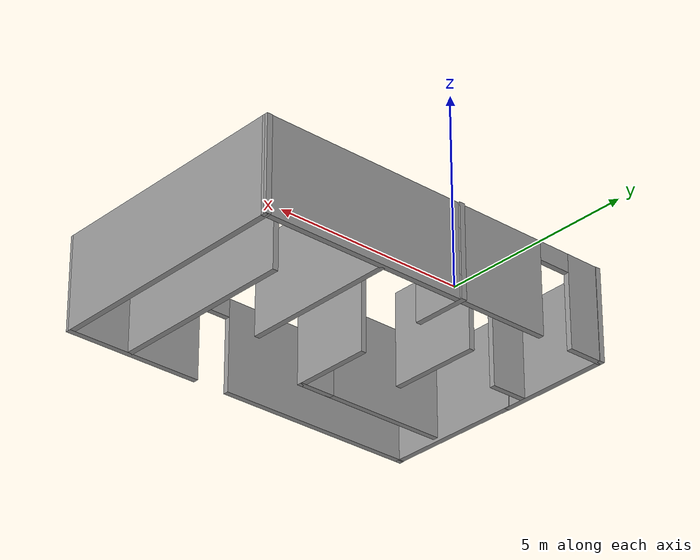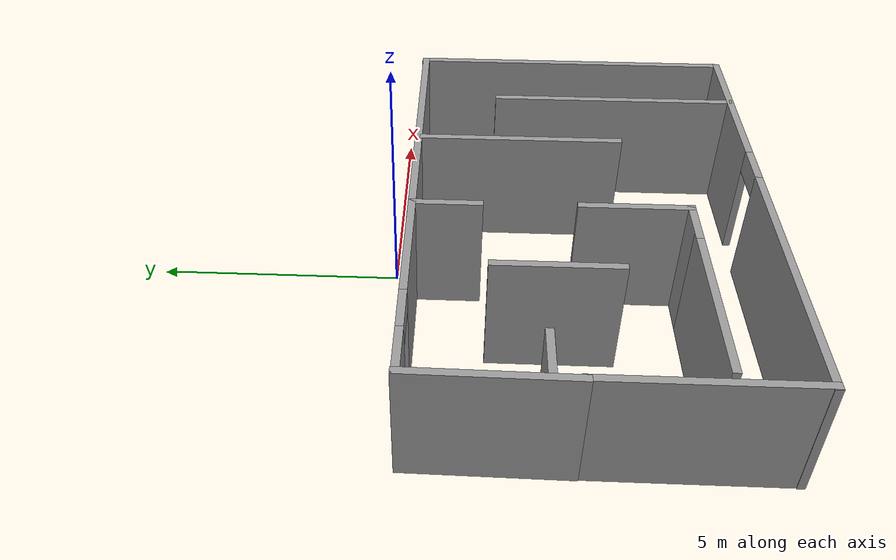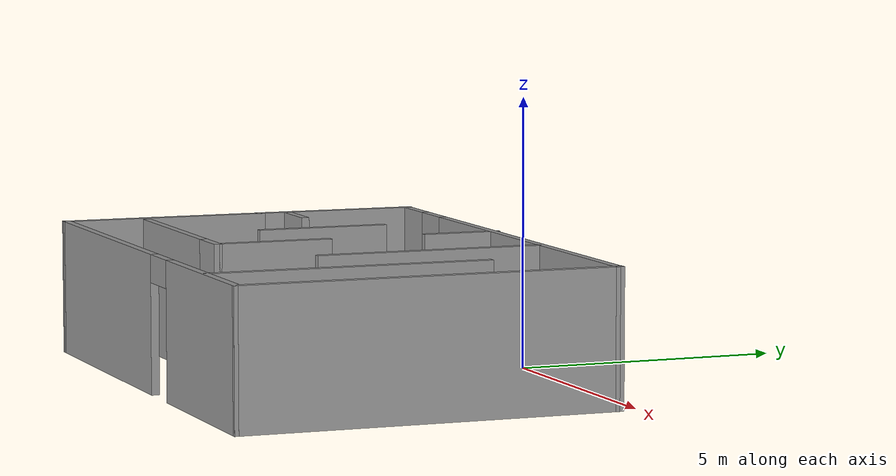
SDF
<?xml version='1.0'?>
<sdf version='1.7'>
  <model name='milo_labe'>
    <pose>0.050582 -3.66416 0 0 -0 0</pose>
    <link name='Wall_0'>
      <collision name='Wall_0_Collision'>
        <geometry>
          <box>
            <size>4 0.15 2.5</size>
          </box>
        </geometry>
        <pose>0 0 1.25 0 -0 0</pose>
      </collision>
      <visual name='Wall_0_Visual'>
        <pose>0 0 1.25 0 -0 0</pose>
        <geometry>
          <box>
            <size>4 0.15 2.5</size>
          </box>
        </geometry>
        <material>
          <script>
            <uri>file://media/materials/scripts/gazebo.material</uri>
            <name>Gazebo/Grey</name>
          </script>
          <ambient>1 1 1 1</ambient>
        </material>
        <meta>
          <layer>0</layer>
        </meta>
      </visual>
      <pose>-5.03541 -1.66406 0 0 -0 -1.5708</pose>
    </link>
    <link name='Wall_1'>
      <pose>-0.004607 -3.58245 0 0 -0 0.001311</pose>
      <visual name='Wall_1_Visual_0'>
        <pose>-2.30503 0 1.25 0 -0 0</pose>
        <geometry>
          <box>
            <size>5.628 0.15 2.5</size>
          </box>
        </geometry>
        <material>
          <script>
            <uri>file://media/materials/scripts/gazebo.material</uri>
            <name>Gazebo/Grey</name>
          </script>
          <ambient>1 1 1 1</ambient>
        </material>
        <meta>
          <layer>0</layer>
        </meta>
      </visual>
      <collision name='Wall_1_Collision_0'>
        <geometry>
          <box>
            <size>5.628 0.15 2.5</size>
          </box>
        </geometry>
        <pose>-2.30503 0 1.25 0 -0 0</pose>
      </collision>
      <visual name='Wall_1_Visual_1'>
        <pose>3.264 0 1.25 0 -0 0</pose>
        <geometry>
          <box>
            <size>3.71006 0.15 2.5</size>
          </box>
        </geometry>
        <material>
          <script>
            <uri>file://media/materials/scripts/gazebo.material</uri>
            <name>Gazebo/Grey</name>
          </script>
          <ambient>1 1 1 1</ambient>
        </material>
        <meta>
          <layer>0</layer>
        </meta>
      </visual>
      <collision name='Wall_1_Collision_1'>
        <geometry>
          <box>
            <size>3.71006 0.15 2.5</size>
          </box>
        </geometry>
        <pose>3.264 0 1.25 0 -0 0</pose>
      </collision>
      <visual name='Wall_1_Visual_2'>
        <pose>0.958971 0 2.25 0 -0 0</pose>
        <geometry>
          <box>
            <size>0.9 0.15 0.5</size>
          </box>
        </geometry>
        <material>
          <script>
            <uri>file://media/materials/scripts/gazebo.material</uri>
            <name>Gazebo/Grey</name>
          </script>
          <ambient>1 1 1 1</ambient>
        </material>
        <meta>
          <layer>0</layer>
        </meta>
      </visual>
      <collision name='Wall_1_Collision_2'>
        <geometry>
          <box>
            <size>0.9 0.15 0.5</size>
          </box>
        </geometry>
        <pose>0.958971 0 2.25 0 -0 0</pose>
      </collision>
    </link>
    <link name='Wall_10'>
      <collision name='Wall_10_Collision'>
        <geometry>
          <box>
            <size>2.25 0.15 2.5</size>
          </box>
        </geometry>
        <pose>0 0 1.25 0 -0 0</pose>
      </collision>
      <visual name='Wall_10_Visual'>
        <pose>0 0 1.25 0 -0 0</pose>
        <geometry>
          <box>
            <size>2.25 0.15 2.5</size>
          </box>
        </geometry>
        <material>
          <script>
            <uri>file://media/materials/scripts/gazebo.material</uri>
            <name>Gazebo/Grey</name>
          </script>
          <ambient>1 1 1 1</ambient>
        </material>
        <meta>
          <layer>0</layer>
        </meta>
      </visual>
      <pose>-0.568702 -1.0325 0 0 -0 1.5708</pose>
    </link>
    <link name='Wall_13'>
      <collision name='Wall_13_Collision'>
        <geometry>
          <box>
            <size>1 0.15 2.5</size>
          </box>
        </geometry>
        <pose>0 0 1.25 0 -0 0</pose>
      </collision>
      <visual name='Wall_13_Visual'>
        <pose>0 0 1.25 0 -0 0</pose>
        <geometry>
          <box>
            <size>1 0.15 2.5</size>
          </box>
        </geometry>
        <material>
          <script>
            <uri>file://media/materials/scripts/gazebo.material</uri>
            <name>Gazebo/Grey</name>
          </script>
          <ambient>1 1 1 1</ambient>
        </material>
        <meta>
          <layer>0</layer>
        </meta>
      </visual>
      <pose>-4.46273 0.800548 0 0 -0 0</pose>
    </link>
    <link name='Wall_15'>
      <collision name='Wall_15_Collision'>
        <geometry>
          <box>
            <size>4.25 0.15 2.5</size>
          </box>
        </geometry>
        <pose>0 0 1.25 0 -0 0</pose>
      </collision>
      <visual name='Wall_15_Visual'>
        <pose>0 0 1.25 0 -0 0</pose>
        <geometry>
          <box>
            <size>4.25 0.15 2.5</size>
          </box>
        </geometry>
        <material>
          <script>
            <uri>file://media/materials/scripts/gazebo.material</uri>
            <name>Gazebo/Grey</name>
          </script>
          <ambient>1 1 1 1</ambient>
        </material>
        <meta>
          <layer>0</layer>
        </meta>
      </visual>
      <pose>1.71155 1.1313 0 0 -0 1.5708</pose>
    </link>
    <link name='Wall_17'>
      <collision name='Wall_17_Collision'>
        <geometry>
          <box>
            <size>5.25 0.15 2.5</size>
          </box>
        </geometry>
        <pose>0 0 1.25 0 -0 0</pose>
      </collision>
      <visual name='Wall_17_Visual'>
        <pose>0 0 1.25 0 -0 0</pose>
        <geometry>
          <box>
            <size>5.25 0.15 2.5</size>
          </box>
        </geometry>
        <material>
          <script>
            <uri>file://media/materials/scripts/gazebo.material</uri>
            <name>Gazebo/Grey</name>
          </script>
          <ambient>1 1 1 1</ambient>
        </material>
        <meta>
          <layer>0</layer>
        </meta>
      </visual>
      <pose>3.39112 -0.987252 0 0 -0 1.5708</pose>
    </link>
    <link name='Wall_19'>
      <collision name='Wall_19_Collision'>
        <geometry>
          <box>
            <size>1.5 0.15 2.5</size>
          </box>
        </geometry>
        <pose>0 0 1.25 0 -0 0</pose>
      </collision>
      <visual name='Wall_19_Visual'>
        <pose>0 0 1.25 0 -0 0</pose>
        <geometry>
          <box>
            <size>1.5 0.15 2.5</size>
          </box>
        </geometry>
        <material>
          <script>
            <uri>file://media/materials/scripts/gazebo.material</uri>
            <name>Gazebo/Grey</name>
          </script>
          <ambient>1 1 1 1</ambient>
        </material>
        <meta>
          <layer>0</layer>
        </meta>
      </visual>
      <pose>-0.594189 2.65663 0 0 -0 -1.5708</pose>
    </link>
    <link name='Wall_2'>
      <collision name='Wall_2_Collision'>
        <geometry>
          <box>
            <size>7.02001 0.15 2.5</size>
          </box>
        </geometry>
        <pose>0 0 1.25 0 -0 0</pose>
      </collision>
      <visual name='Wall_2_Visual'>
        <pose>0 0 1.25 0 -0 0</pose>
        <geometry>
          <box>
            <size>7.02001 0.15 2.5</size>
          </box>
        </geometry>
        <material>
          <script>
            <uri>file://media/materials/scripts/gazebo.material</uri>
            <name>Gazebo/Grey</name>
          </script>
          <ambient>1 1 1 1</ambient>
        </material>
        <meta>
          <layer>0</layer>
        </meta>
      </visual>
      <pose>5.04442 -0.140838 0 0 -0 1.56934</pose>
    </link>
    <link name='Wall_3'>
      <pose>0.025231 3.28255 0 0 -0 -3.14127</pose>
      <visual name='Wall_3_Visual_0'>
        <pose>-0.976436 0 1.25 0 -0 0</pose>
        <geometry>
          <box>
            <size>8.2455 0.15 2.5</size>
          </box>
        </geometry>
        <material>
          <script>
            <uri>file://media/materials/scripts/gazebo.material</uri>
            <name>Gazebo/Grey</name>
          </script>
          <ambient>1 1 1 1</ambient>
        </material>
        <meta>
          <layer>0</layer>
        </meta>
      </visual>
      <collision name='Wall_3_Collision_0'>
        <geometry>
          <box>
            <size>8.2455 0.15 2.5</size>
          </box>
        </geometry>
        <pose>-0.976436 0 1.25 0 -0 0</pose>
      </collision>
      <visual name='Wall_3_Visual_1'>
        <pose>4.57275 0 1.25 0 -0 0</pose>
        <geometry>
          <box>
            <size>1.05287 0.15 2.5</size>
          </box>
        </geometry>
        <material>
          <script>
            <uri>file://media/materials/scripts/gazebo.material</uri>
            <name>Gazebo/Grey</name>
          </script>
          <ambient>1 1 1 1</ambient>
        </material>
        <meta>
          <layer>0</layer>
        </meta>
      </visual>
      <collision name='Wall_3_Collision_1'>
        <geometry>
          <box>
            <size>1.05287 0.15 2.5</size>
          </box>
        </geometry>
        <pose>4.57275 0 1.25 0 -0 0</pose>
      </collision>
      <visual name='Wall_3_Visual_2'>
        <pose>3.59632 0 2.25 0 -0 0</pose>
        <geometry>
          <box>
            <size>0.9 0.15 0.5</size>
          </box>
        </geometry>
        <material>
          <script>
            <uri>file://media/materials/scripts/gazebo.material</uri>
            <name>Gazebo/Grey</name>
          </script>
          <ambient>1 1 1 1</ambient>
        </material>
        <meta>
          <layer>0</layer>
        </meta>
      </visual>
      <collision name='Wall_3_Collision_2'>
        <geometry>
          <box>
            <size>0.9 0.15 0.5</size>
          </box>
        </geometry>
        <pose>3.59632 0 2.25 0 -0 0</pose>
      </collision>
    </link>
    <link name='Wall_4'>
      <collision name='Wall_4_Collision'>
        <geometry>
          <box>
            <size>3.18331 0.15 2.5</size>
          </box>
        </geometry>
        <pose>0 0 1.25 0 -0 0</pose>
      </collision>
      <visual name='Wall_4_Visual'>
        <pose>0 0 1.25 0 -0 0</pose>
        <geometry>
          <box>
            <size>3.18331 0.15 2.5</size>
          </box>
        </geometry>
        <material>
          <script>
            <uri>file://media/materials/scripts/gazebo.material</uri>
            <name>Gazebo/Grey</name>
          </script>
          <ambient>1 1 1 1</ambient>
        </material>
        <meta>
          <layer>0</layer>
        </meta>
      </visual>
      <pose>-5.03041 1.77755 0 0 -0 -1.58281</pose>
    </link>
    <link name='Wall_6'>
      <collision name='Wall_6_Collision'>
        <geometry>
          <box>
            <size>2.5 0.15 2.5</size>
          </box>
        </geometry>
        <pose>0 0 1.25 0 -0 0</pose>
      </collision>
      <visual name='Wall_6_Visual'>
        <pose>0 0 1.25 0 -0 0</pose>
        <geometry>
          <box>
            <size>2.5 0.15 2.5</size>
          </box>
        </geometry>
        <material>
          <script>
            <uri>file://media/materials/scripts/gazebo.material</uri>
            <name>Gazebo/Grey</name>
          </script>
          <ambient>1 1 1 1</ambient>
        </material>
        <meta>
          <layer>0</layer>
        </meta>
      </visual>
      <pose>-2.34853 0.564523 0 0 -0 -1.5708</pose>
    </link>
    <link name='Wall_8'>
      <collision name='Wall_8_Collision'>
        <geometry>
          <box>
            <size>3.5 0.15 2.5</size>
          </box>
        </geometry>
        <pose>0 0 1.25 0 -0 0</pose>
      </collision>
      <visual name='Wall_8_Visual'>
        <pose>0 0 1.25 0 -0 0</pose>
        <geometry>
          <box>
            <size>3.5 0.15 2.5</size>
          </box>
        </geometry>
        <material>
          <script>
            <uri>file://media/materials/scripts/gazebo.material</uri>
            <name>Gazebo/Grey</name>
          </script>
          <ambient>1 1 1 1</ambient>
        </material>
        <meta>
          <layer>0</layer>
        </meta>
      </visual>
      <pose>-3.0937 -2.0825 0 0 -0 0</pose>
    </link>
    <link name='Wall_9'>
      <collision name='Wall_9_Collision'>
        <geometry>
          <box>
            <size>1 0.15 2.5</size>
          </box>
        </geometry>
        <pose>0 0 1.25 0 -0 0</pose>
      </collision>
      <visual name='Wall_9_Visual'>
        <pose>0 0 1.25 0 -0 0</pose>
        <geometry>
          <box>
            <size>1 0.15 2.5</size>
          </box>
        </geometry>
        <material>
          <script>
            <uri>file://media/materials/scripts/gazebo.material</uri>
            <name>Gazebo/Grey</name>
          </script>
          <ambient>1 1 1 1</ambient>
        </material>
        <meta>
          <layer>0</layer>
        </meta>
      </visual>
      <pose>-0.993702 -2.0825 0 0 -0 0</pose>
    </link>
    <static>1</static>
  </model>
</sdf>
